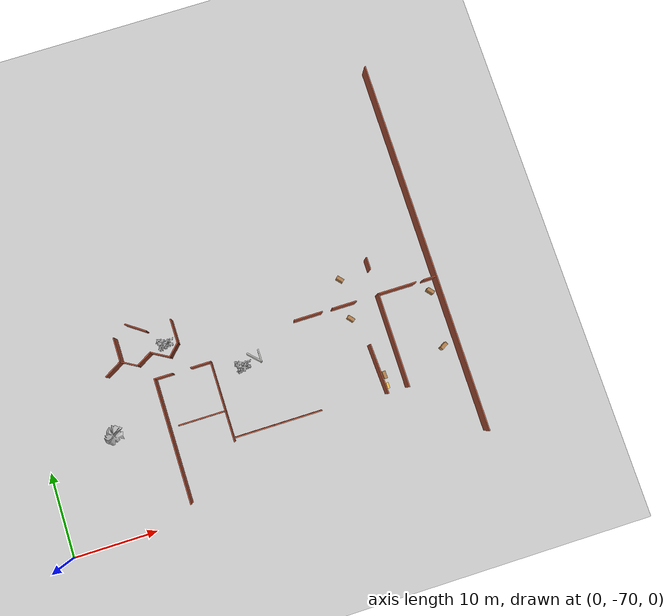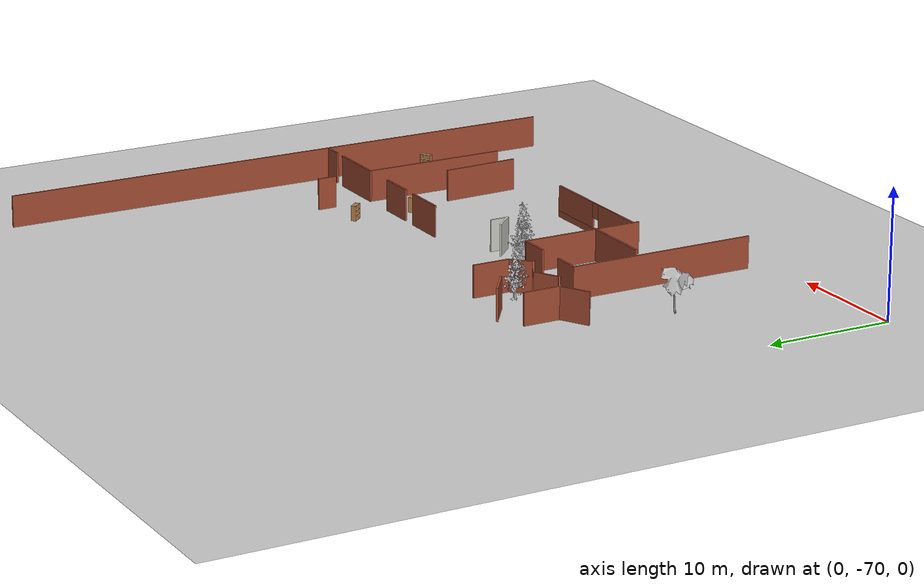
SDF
<sdf version="1.6">
 <world name="default">
  <model name="maze_rect_3">
   <pose>4e-06 -9.9e-05 0 0 -0 1.57001</pose>
   <link name="Wall_24">
    <collision name="Wall_24_Collision">
     <geometry><box><size>3 0.15 2.5</size></box></geometry>
     <pose>0 0 1.25 0 -0 0</pose>
    </collision>
    <visual name="Wall_24_Visual">
     <pose>0 0 1.25 0 -0 0</pose>
     <geometry><box><size>3 0.15 2.5</size></box></geometry>
     <material>
      <script><uri>file://media/materials/scripts/gazebo.material</uri><name>Gazebo/Bricks</name></script>
      <ambient>1 1 1 1</ambient>
     </material>
     <meta><layer>0</layer></meta>
    </visual>
    <pose>-48.4861 -18.717 0 0 -0 3.14159</pose>
   </link>
   <link name="Wall_25">
    <collision name="Wall_25_Collision">
     <geometry><box><size>2 0.15 2.5</size></box></geometry>
     <pose>0 0 1.25 0 -0 0</pose>
    </collision>
    <visual name="Wall_25_Visual">
     <pose>0 0 1.25 0 -0 0</pose>
     <geometry><box><size>2 0.15 2.5</size></box></geometry>
     <material>
      <script><uri>file://media/materials/scripts/gazebo.material</uri><name>Gazebo/Bricks</name></script>
      <ambient>1 1 1 1</ambient>
     </material>
     <meta><layer>0</layer></meta>
    </visual>
    <pose>-50.5652 -18.0629 0 0 -0 2.35619</pose>
   </link>
   <link name="Wall_26">
    <collision name="Wall_26_Collision">
     <geometry><box><size>2.5 0.15 2.5</size></box></geometry>
     <pose>0 0 1.25 0 -0 0</pose>
    </collision>
    <visual name="Wall_26_Visual">
     <pose>0 0 1.25 0 -0 0</pose>
     <geometry><box><size>2.5 0.15 2.5</size></box></geometry>
     <material>
      <script><uri>file://media/materials/scripts/gazebo.material</uri><name>Gazebo/Bricks</name></script>
      <ambient>1 1 1 1</ambient>
     </material>
     <meta><layer>0</layer></meta>
    </visual>
    <pose>-50.6318 -16.3913 0 0 -0 1.0472</pose>
   </link>
   <link name="Wall_27">
    <collision name="Wall_27_Collision">
     <geometry><box><size>2.25 0.15 2.5</size></box></geometry>
     <pose>0 0 1.25 0 -0 0</pose>
    </collision>
    <visual name="Wall_27_Visual">
     <pose>0 0 1.25 0 -0 0</pose>
     <geometry><box><size>2.25 0.15 2.5</size></box></geometry>
     <material>
      <script><uri>file://media/materials/scripts/gazebo.material</uri><name>Gazebo/Bricks</name></script>
      <ambient>1 1 1 1</ambient>
     </material>
     <meta><layer>0</layer></meta>
    </visual>
    <pose>-50.5693 -14.4644 0 0 -0 2.0944</pose>
   </link>
   <link name="Wall_28">
    <collision name="Wall_28_Collision">
     <geometry><box><size>2.25 0.15 2.5</size></box></geometry>
     <pose>0 0 1.25 0 -0 0</pose>
    </collision>
    <visual name="Wall_28_Visual">
     <pose>0 0 1.25 0 -0 0</pose>
     <geometry><box><size>2.25 0.15 2.5</size></box></geometry>
     <material>
      <script><uri>file://media/materials/scripts/gazebo.material</uri><name>Gazebo/Bricks</name></script>
      <ambient>1 1 1 1</ambient>
     </material>
     <meta><layer>0</layer></meta>
    </visual>
    <pose>-50.5693 -12.6457 0 0 -0 1.0472</pose>
   </link>
   <link name="Wall_29">
    <collision name="Wall_29_Collision">
     <geometry><box><size>2.5 0.15 2.5</size></box></geometry>
     <pose>0 0 1.25 0 -0 0</pose>
    </collision>
    <visual name="Wall_29_Visual">
     <pose>0 0 1.25 0 -0 0</pose>
     <geometry><box><size>2.5 0.15 2.5</size></box></geometry>
     <material>
      <script><uri>file://media/materials/scripts/gazebo.material</uri><name>Gazebo/Bricks</name></script>
      <ambient>1 1 1 1</ambient>
     </material>
     <meta><layer>0</layer></meta>
    </visual>
    <pose>-50.6318 -10.7188 0 0 -0 2.0944</pose>
   </link>
   <link name="Wall_588">
    <collision name="Wall_588_Collision">
     <geometry><box><size>3 0.15 2.5</size></box></geometry>
     <pose>0 0 1.25 0 -0 0</pose>
    </collision>
    <visual name="Wall_588_Visual">
     <pose>0 0 1.25 0 -0 0</pose>
     <geometry><box><size>3 0.15 2.5</size></box></geometry>
     <material>
      <script><uri>file://media/materials/scripts/gazebo.material</uri><name>Gazebo/Bricks</name></script>
      <ambient>1 1 1 1</ambient>
     </material>
     <meta><layer>0</layer></meta>
    </visual>
    <pose>-48.6193 -11.7364 0 0 -0 3.14159</pose>
   </link>
   <link name="Wall_590">
    <collision name="Wall_590_Collision">
     <geometry><box><size>2.69612 0.15 2.5</size></box></geometry>
     <pose>0 0 1.25 0 -0 0</pose>
    </collision>
    <visual name="Wall_590_Visual">
     <pose>0 0 1.25 0 -0 0</pose>
     <geometry><box><size>2.69612 0.15 2.5</size></box></geometry>
     <material>
      <script><uri>file://media/materials/scripts/gazebo.material</uri><name>Gazebo/Bricks</name></script>
      <ambient>1 1 1 1</ambient>
     </material>
     <meta><layer>0</layer></meta>
    </visual>
    <pose>-46.7323 -14.5264 0 0 -0 0.953384</pose>
   </link>
   <static>1</static>
  </model>
  <model name="map_palace_v2_model_1_0">
   <pose>-3.1e-05 -55 0 0 -0 3.14</pose>
   <link name="Wall_12">
    <collision name="Wall_12_Collision">
     <geometry><box><size>46 0.15 2.5</size></box></geometry>
     <pose>0 0 1.25 0 -0 0</pose>
    </collision>
    <visual name="Wall_12_Visual">
     <pose>0 0 1.25 0 -0 0</pose>
     <geometry><box><size>46 0.15 2.5</size></box></geometry>
     <material>
      <script><uri>file://media/materials/scripts/gazebo.material</uri><name>Gazebo/Bricks</name></script>
      <ambient>1 1 1 1</ambient>
     </material>
     <meta><layer>0</layer></meta>
    </visual>
    <pose>-50.1193 -7.67754 0 0 -0 -1.5708</pose>
   </link>
   <link name="Wall_132">
    <collision name="Wall_132_Collision">
     <geometry><box><size>1.5 0.15 2.5</size></box></geometry>
     <pose>0 0 1.25 0 -0 0</pose>
    </collision>
    <visual name="Wall_132_Visual">
     <pose>0 0 1.25 0 -0 0</pose>
     <geometry><box><size>1.5 0.15 2.5</size></box></geometry>
     <material>
      <script><uri>file://media/materials/scripts/gazebo.material</uri><name>Gazebo/Bricks</name></script>
      <ambient>1 1 1 1</ambient>
     </material>
     <meta><layer>0</layer></meta>
    </visual>
    <pose>-42.9077 -7.40915 0 0 -0 1.5708</pose>
   </link>
   <link name="Wall_136">
    <collision name="Wall_136_Collision">
     <geometry><box><size>4.75 0.15 2.5</size></box></geometry>
     <pose>0 0 1.25 0 -0 0</pose>
    </collision>
    <visual name="Wall_136_Visual">
     <pose>0 0 1.25 0 -0 0</pose>
     <geometry><box><size>4.75 0.15 2.5</size></box></geometry>
     <material>
      <script><uri>file://media/materials/scripts/gazebo.material</uri><name>Gazebo/Bricks</name></script>
      <ambient>1 1 1 1</ambient>
     </material>
     <meta><layer>0</layer></meta>
    </visual>
    <pose>-45.2077 -3.61102 0 0 -0 3.14159</pose>
   </link>
   <link name="Wall_138">
    <collision name="Wall_138_Collision">
     <geometry><box><size>1.5 0.15 2.5</size></box></geometry>
     <pose>0 0 1.25 0 -0 0</pose>
    </collision>
    <visual name="Wall_138_Visual">
     <pose>0 0 1.25 0 -0 0</pose>
     <geometry><box><size>1.5 0.15 2.5</size></box></geometry>
     <material>
      <script><uri>file://media/materials/scripts/gazebo.material</uri><name>Gazebo/Bricks</name></script>
      <ambient>1 1 1 1</ambient>
     </material>
     <meta><layer>0</layer></meta>
    </visual>
    <pose>-49.2827 -3.61102 0 0 -0 3.14159</pose>
   </link>
   <link name="Wall_179">
    <collision name="Wall_179_Collision">
     <geometry><box><size>3.5 0.15 2.5</size></box></geometry>
     <pose>0 0 1.25 0 -0 0</pose>
    </collision>
    <visual name="Wall_179_Visual">
     <pose>0 0 1.25 0 -0 0</pose>
     <geometry><box><size>3.5 0.15 2.5</size></box></geometry>
     <material>
      <script><uri>file://media/materials/scripts/gazebo.material</uri><name>Gazebo/Bricks</name></script>
      <ambient>1 1 1 1</ambient>
     </material>
     <meta><layer>0</layer></meta>
    </visual>
    <pose>-34.228 -3.55604 0 0 -0 3.14159</pose>
   </link>
   <link name="Wall_18">
    <collision name="Wall_18_Collision">
     <geometry><box><size>9.75 0.15 2.5</size></box></geometry>
     <pose>0 0 1.25 0 -0 0</pose>
    </collision>
    <visual name="Wall_18_Visual">
     <pose>0 0 1.25 0 -0 0</pose>
     <geometry><box><size>9.75 0.15 2.5</size></box></geometry>
     <material>
      <script><uri>file://media/materials/scripts/gazebo.material</uri><name>Gazebo/Bricks</name></script>
      <ambient>1 1 1 1</ambient>
     </material>
     <meta><layer>0</layer></meta>
    </visual>
    <pose>-21.7193 2.94746 0 0 -0 -1.5708</pose>
   </link>
   <link name="Wall_181">
    <collision name="Wall_181_Collision">
     <geometry><box><size>3 0.15 2.5</size></box></geometry>
     <pose>0 0 1.25 0 -0 0</pose>
    </collision>
    <visual name="Wall_181_Visual">
     <pose>0 0 1.25 0 -0 0</pose>
     <geometry><box><size>3 0.15 2.5</size></box></geometry>
     <material>
      <script><uri>file://media/materials/scripts/gazebo.material</uri><name>Gazebo/Bricks</name></script>
      <ambient>1 1 1 1</ambient>
     </material>
     <meta><layer>0</layer></meta>
    </visual>
    <pose>-38.678 -3.55604 0 0 -0 3.14159</pose>
   </link>
   <link name="Wall_19">
    <collision name="Wall_19_Collision">
     <geometry><box><size>2.5 0.15 2.5</size></box></geometry>
     <pose>0 0 1.25 0 -0 0</pose>
    </collision>
    <visual name="Wall_19_Visual">
     <pose>0 0 1.25 0 -0 0</pose>
     <geometry><box><size>2.5 0.15 2.5</size></box></geometry>
     <material>
      <script><uri>file://media/materials/scripts/gazebo.material</uri><name>Gazebo/Bricks</name></script>
      <ambient>1 1 1 1</ambient>
     </material>
     <meta><layer>0</layer></meta>
    </visual>
    <pose>-20.5443 -1.85254 0 0 -0 0</pose>
   </link>
   <link name="Wall_191">
    <collision name="Wall_191_Collision">
     <geometry><box><size>6.09813 0.15 2.5</size></box></geometry>
     <pose>0 0 1.25 0 -0 0</pose>
    </collision>
    <visual name="Wall_191_Visual">
     <pose>0 0 1.25 0 -0 0</pose>
     <geometry><box><size>6.09813 0.15 2.5</size></box></geometry>
     <material>
      <script><uri>file://media/materials/scripts/gazebo.material</uri><name>Gazebo/Bricks</name></script>
      <ambient>1 1 1 1</ambient>
     </material>
     <meta><layer>0</layer></meta>
    </visual>
    <pose>-40.2476 4.77589 0 0 -0 1.61175</pose>
   </link>
   <link name="Wall_198">
    <collision name="Wall_198_Collision">
     <geometry><box><size>5.75 0.15 2.5</size></box></geometry>
     <pose>0 0 1.25 0 -0 0</pose>
    </collision>
    <visual name="Wall_198_Visual">
     <pose>0 0 1.25 0 -0 0</pose>
     <geometry><box><size>5.75 0.15 2.5</size></box></geometry>
     <material>
      <script><uri>file://media/materials/scripts/gazebo.material</uri><name>Gazebo/Bricks</name></script>
      <ambient>1 1 1 1</ambient>
     </material>
     <meta><layer>0</layer></meta>
    </visual>
    <pose>-18.9274 4.09535 0 0 -0 0</pose>
   </link>
   <link name="Wall_21">
    <collision name="Wall_21_Collision">
     <geometry><box><size>2.25 0.15 2.5</size></box></geometry>
     <pose>0 0 1.25 0 -0 0</pose>
    </collision>
    <visual name="Wall_21_Visual">
     <pose>0 0 1.25 0 -0 0</pose>
     <geometry><box><size>2.25 0.15 2.5</size></box></geometry>
     <material>
      <script><uri>file://media/materials/scripts/gazebo.material</uri><name>Gazebo/Bricks</name></script>
      <ambient>1 1 1 1</ambient>
     </material>
     <meta><layer>0</layer></meta>
    </visual>
    <pose>-15.9693 -1.85254 0 0 -0 0</pose>
   </link>
   <link name="Wall_22">
    <collision name="Wall_22_Collision">
     <geometry><box><size>15 0.15 2.5</size></box></geometry>
     <pose>0 0 1.25 0 -0 0</pose>
    </collision>
    <visual name="Wall_22_Visual">
     <pose>0 0 1.25 0 -0 0</pose>
     <geometry><box><size>15 0.15 2.5</size></box></geometry>
     <material>
      <script><uri>file://media/materials/scripts/gazebo.material</uri><name>Gazebo/Bricks</name></script>
      <ambient>1 1 1 1</ambient>
     </material>
     <meta><layer>0</layer></meta>
    </visual>
    <pose>-14.9193 5.57246 0 0 -0 1.5708</pose>
   </link>
   <link name="Wall_312">
    <pose>-27.0518 7.36745 0 0 -0 3.14159</pose>
    <visual name="Wall_312_Visual_0">
     <pose>-2.88797 0 1.25 0 -0 0</pose>
     <geometry><box><size>4.97407 0.15 2.5</size></box></geometry>
     <material>
      <script><uri>file://media/materials/scripts/gazebo.material</uri><name>Gazebo/Bricks</name></script>
      <ambient>1 1 1 1</ambient>
     </material>
     <meta><layer>0</layer></meta>
    </visual>
    <collision name="Wall_312_Collision_0">
     <geometry><box><size>4.97407 0.15 2.5</size></box></geometry>
     <pose>-2.88797 0 1.25 0 -0 0</pose>
    </collision>
    <visual name="Wall_312_Visual_1">
     <pose>2.48703 0 0.25 0 -0 0</pose>
     <geometry><box><size>5.77593 0.15 0.5</size></box></geometry>
     <material>
      <script><uri>file://media/materials/scripts/gazebo.material</uri><name>Gazebo/Bricks</name></script>
      <ambient>1 1 1 1</ambient>
     </material>
     <meta><layer>0</layer></meta>
    </visual>
    <collision name="Wall_312_Collision_1">
     <geometry><box><size>5.77593 0.15 0.5</size></box></geometry>
     <pose>2.48703 0 0.25 0 -0 0</pose>
    </collision>
    <visual name="Wall_312_Visual_2">
     <pose>2.88703 0 1.5 0 -0 0</pose>
     <geometry><box><size>4.97593 0.15 2</size></box></geometry>
     <material>
      <script><uri>file://media/materials/scripts/gazebo.material</uri><name>Gazebo/Bricks</name></script>
      <ambient>1 1 1 1</ambient>
     </material>
     <meta><layer>0</layer></meta>
    </visual>
    <collision name="Wall_312_Collision_2">
     <geometry><box><size>4.97593 0.15 2</size></box></geometry>
     <pose>2.88703 0 1.5 0 -0 0</pose>
    </collision>
    <visual name="Wall_312_Visual_3">
     <pose>-0.000933 0 1.9 0 -0 0</pose>
     <geometry><box><size>0.8 0.15 1.2</size></box></geometry>
     <material>
      <script><uri>file://media/materials/scripts/gazebo.material</uri><name>Gazebo/Bricks</name></script>
      <ambient>1 1 1 1</ambient>
     </material>
     <meta><layer>0</layer></meta>
    </visual>
    <collision name="Wall_312_Collision_3">
     <geometry><box><size>0.8 0.15 1.2</size></box></geometry>
     <pose>-0.000933 0 1.9 0 -0 0</pose>
    </collision>
   </link>
   <link name="Wall_96">
    <collision name="Wall_96_Collision">
     <geometry><box><size>11.5 0.15 2.5</size></box></geometry>
     <pose>0 0 1.25 0 -0 0</pose>
    </collision>
    <visual name="Wall_96_Visual">
     <pose>0 0 1.25 0 -0 0</pose>
     <geometry><box><size>11.5 0.15 2.5</size></box></geometry>
     <material>
      <script><uri>file://media/materials/scripts/gazebo.material</uri><name>Gazebo/Bricks</name></script>
      <ambient>1 1 1 1</ambient>
     </material>
     <meta><layer>0</layer></meta>
    </visual>
    <pose>-42.9077 2.06398 0 0 -0 -1.5708</pose>
   </link>
   <static>1</static>
  </model>
  <model name="bookshelf_clone_1_clone_1">
   <static>1</static>
   <link name="link">
    <inertial><mass>1</mass></inertial>
    <collision name="back">
     <pose>0 0.005 0.6 0 -0 0</pose>
     <geometry><box><size>0.9 0.01 1.2</size></box></geometry>
    </collision>
    <visual name="visual1">
     <pose>0 0.005 0.6 0 -0 0</pose>
     <geometry><box><size>0.9 0.01 1.2</size></box></geometry>
     <material>
      <script><uri>file://media/materials/scripts/gazebo.material</uri><name>Gazebo/Wood</name></script>
     </material>
    </visual>
    <collision name="left_side">
     <pose>0.45 -0.195 0.6 0 -0 0</pose>
     <geometry><box><size>0.02 0.4 1.2</size></box></geometry>
    </collision>
    <visual name="visual2">
     <pose>0.45 -0.195 0.6 0 -0 0</pose>
     <geometry><box><size>0.02 0.4 1.2</size></box></geometry>
     <material>
      <script><uri>file://media/materials/scripts/gazebo.material</uri><name>Gazebo/Wood</name></script>
     </material>
    </visual>
    <collision name="right_side">
     <pose>-0.45 -0.195 0.6 0 -0 0</pose>
     <geometry><box><size>0.02 0.4 1.2</size></box></geometry>
    </collision>
    <visual name="visual3">
     <pose>-0.45 -0.195 0.6 0 -0 0</pose>
     <geometry><box><size>0.02 0.4 1.2</size></box></geometry>
     <material>
      <script><uri>file://media/materials/scripts/gazebo.material</uri><name>Gazebo/Wood</name></script>
     </material>
    </visual>
    <collision name="bottom">
     <pose>0 -0.195 0.03 0 -0 0</pose>
     <geometry><box><size>0.88 0.4 0.06</size></box></geometry>
    </collision>
    <visual name="visual4">
     <pose>0 -0.195 0.03 0 -0 0</pose>
     <geometry><box><size>0.88 0.4 0.06</size></box></geometry>
     <material>
      <script><uri>file://media/materials/scripts/gazebo.material</uri><name>Gazebo/Wood</name></script>
     </material>
    </visual>
    <collision name="top">
     <pose>0 -0.195 1.19 0 -0 0</pose>
     <geometry><box><size>0.88 0.4 0.02</size></box></geometry>
    </collision>
    <visual name="visual5">
     <pose>0 -0.195 1.19 0 -0 0</pose>
     <geometry><box><size>0.88 0.4 0.02</size></box></geometry>
     <material>
      <script><uri>file://media/materials/scripts/gazebo.material</uri><name>Gazebo/Wood</name></script>
     </material>
    </visual>
    <collision name="low_shelf">
     <pose>0 -0.195 0.43 0 -0 0</pose>
     <geometry><box><size>0.88 0.4 0.02</size></box></geometry>
    </collision>
    <visual name="visual6">
     <pose>0 -0.195 0.43 0 -0 0</pose>
     <geometry><box><size>0.88 0.4 0.02</size></box></geometry>
     <material>
      <script><uri>file://media/materials/scripts/gazebo.material</uri><name>Gazebo/Wood</name></script>
     </material>
    </visual>
    <collision name="high_shelf">
     <pose>0 -0.195 0.8 0 -0 0</pose>
     <geometry><box><size>0.88 0.4 0.02</size></box></geometry>
    </collision>
    <visual name="visual7">
     <pose>0 -0.195 0.8 0 -0 0</pose>
     <geometry><box><size>0.88 0.4 0.02</size></box></geometry>
     <material>
      <script><uri>file://media/materials/scripts/gazebo.material</uri><name>Gazebo/Wood</name></script>
     </material>
    </visual>
   </link>
   <pose>39.257 -53.0439 0 0 0 -0.862924</pose>
  </model>
  <model name="bookshelf_clone_1_clone_1_clone">
   <static>1</static>
   <link name="link">
    <inertial><mass>1</mass></inertial>
    <collision name="back">
     <pose>0 0.005 0.6 0 -0 0</pose>
     <geometry><box><size>0.9 0.01 1.2</size></box></geometry>
    </collision>
    <visual name="visual1">
     <pose>0 0.005 0.6 0 -0 0</pose>
     <geometry><box><size>0.9 0.01 1.2</size></box></geometry>
     <material>
      <script><uri>file://media/materials/scripts/gazebo.material</uri><name>Gazebo/Wood</name></script>
     </material>
    </visual>
    <collision name="left_side">
     <pose>0.45 -0.195 0.6 0 -0 0</pose>
     <geometry><box><size>0.02 0.4 1.2</size></box></geometry>
    </collision>
    <visual name="visual2">
     <pose>0.45 -0.195 0.6 0 -0 0</pose>
     <geometry><box><size>0.02 0.4 1.2</size></box></geometry>
     <material>
      <script><uri>file://media/materials/scripts/gazebo.material</uri><name>Gazebo/Wood</name></script>
     </material>
    </visual>
    <collision name="right_side">
     <pose>-0.45 -0.195 0.6 0 -0 0</pose>
     <geometry><box><size>0.02 0.4 1.2</size></box></geometry>
    </collision>
    <visual name="visual3">
     <pose>-0.45 -0.195 0.6 0 -0 0</pose>
     <geometry><box><size>0.02 0.4 1.2</size></box></geometry>
     <material>
      <script><uri>file://media/materials/scripts/gazebo.material</uri><name>Gazebo/Wood</name></script>
     </material>
    </visual>
    <collision name="bottom">
     <pose>0 -0.195 0.03 0 -0 0</pose>
     <geometry><box><size>0.88 0.4 0.06</size></box></geometry>
    </collision>
    <visual name="visual4">
     <pose>0 -0.195 0.03 0 -0 0</pose>
     <geometry><box><size>0.88 0.4 0.06</size></box></geometry>
     <material>
      <script><uri>file://media/materials/scripts/gazebo.material</uri><name>Gazebo/Wood</name></script>
     </material>
    </visual>
    <collision name="top">
     <pose>0 -0.195 1.19 0 -0 0</pose>
     <geometry><box><size>0.88 0.4 0.02</size></box></geometry>
    </collision>
    <visual name="visual5">
     <pose>0 -0.195 1.19 0 -0 0</pose>
     <geometry><box><size>0.88 0.4 0.02</size></box></geometry>
     <material>
      <script><uri>file://media/materials/scripts/gazebo.material</uri><name>Gazebo/Wood</name></script>
     </material>
    </visual>
    <collision name="low_shelf">
     <pose>0 -0.195 0.43 0 -0 0</pose>
     <geometry><box><size>0.88 0.4 0.02</size></box></geometry>
    </collision>
    <visual name="visual6">
     <pose>0 -0.195 0.43 0 -0 0</pose>
     <geometry><box><size>0.88 0.4 0.02</size></box></geometry>
     <material>
      <script><uri>file://media/materials/scripts/gazebo.material</uri><name>Gazebo/Wood</name></script>
     </material>
    </visual>
    <collision name="high_shelf">
     <pose>0 -0.195 0.8 0 -0 0</pose>
     <geometry><box><size>0.88 0.4 0.02</size></box></geometry>
    </collision>
    <visual name="visual7">
     <pose>0 -0.195 0.8 0 -0 0</pose>
     <geometry><box><size>0.88 0.4 0.02</size></box></geometry>
     <material>
      <script><uri>file://media/materials/scripts/gazebo.material</uri><name>Gazebo/Wood</name></script>
     </material>
    </visual>
   </link>
   <pose>40.614 -60.7059 0 0 -0 1.61733</pose>
  </model>
  <model name="bookshelf_clone_1_clone_1_clone_0">
   <static>1</static>
   <link name="link">
    <inertial><mass>1</mass></inertial>
    <collision name="back">
     <pose>0 0.005 0.6 0 -0 0</pose>
     <geometry><box><size>0.9 0.01 1.2</size></box></geometry>
    </collision>
    <visual name="visual1">
     <pose>0 0.005 0.6 0 -0 0</pose>
     <geometry><box><size>0.9 0.01 1.2</size></box></geometry>
     <material>
      <script><uri>file://media/materials/scripts/gazebo.material</uri><name>Gazebo/Wood</name></script>
     </material>
    </visual>
    <collision name="left_side">
     <pose>0.45 -0.195 0.6 0 -0 0</pose>
     <geometry><box><size>0.02 0.4 1.2</size></box></geometry>
    </collision>
    <visual name="visual2">
     <pose>0.45 -0.195 0.6 0 -0 0</pose>
     <geometry><box><size>0.02 0.4 1.2</size></box></geometry>
     <material>
      <script><uri>file://media/materials/scripts/gazebo.material</uri><name>Gazebo/Wood</name></script>
     </material>
    </visual>
    <collision name="right_side">
     <pose>-0.45 -0.195 0.6 0 -0 0</pose>
     <geometry><box><size>0.02 0.4 1.2</size></box></geometry>
    </collision>
    <visual name="visual3">
     <pose>-0.45 -0.195 0.6 0 -0 0</pose>
     <geometry><box><size>0.02 0.4 1.2</size></box></geometry>
     <material>
      <script><uri>file://media/materials/scripts/gazebo.material</uri><name>Gazebo/Wood</name></script>
     </material>
    </visual>
    <collision name="bottom">
     <pose>0 -0.195 0.03 0 -0 0</pose>
     <geometry><box><size>0.88 0.4 0.06</size></box></geometry>
    </collision>
    <visual name="visual4">
     <pose>0 -0.195 0.03 0 -0 0</pose>
     <geometry><box><size>0.88 0.4 0.06</size></box></geometry>
     <material>
      <script><uri>file://media/materials/scripts/gazebo.material</uri><name>Gazebo/Wood</name></script>
     </material>
    </visual>
    <collision name="top">
     <pose>0 -0.195 1.19 0 -0 0</pose>
     <geometry><box><size>0.88 0.4 0.02</size></box></geometry>
    </collision>
    <visual name="visual5">
     <pose>0 -0.195 1.19 0 -0 0</pose>
     <geometry><box><size>0.88 0.4 0.02</size></box></geometry>
     <material>
      <script><uri>file://media/materials/scripts/gazebo.material</uri><name>Gazebo/Wood</name></script>
     </material>
    </visual>
    <collision name="low_shelf">
     <pose>0 -0.195 0.43 0 -0 0</pose>
     <geometry><box><size>0.88 0.4 0.02</size></box></geometry>
    </collision>
    <visual name="visual6">
     <pose>0 -0.195 0.43 0 -0 0</pose>
     <geometry><box><size>0.88 0.4 0.02</size></box></geometry>
     <material>
      <script><uri>file://media/materials/scripts/gazebo.material</uri><name>Gazebo/Wood</name></script>
     </material>
    </visual>
    <collision name="high_shelf">
     <pose>0 -0.195 0.8 0 -0 0</pose>
     <geometry><box><size>0.88 0.4 0.02</size></box></geometry>
    </collision>
    <visual name="visual7">
     <pose>0 -0.195 0.8 0 -0 0</pose>
     <geometry><box><size>0.88 0.4 0.02</size></box></geometry>
     <material>
      <script><uri>file://media/materials/scripts/gazebo.material</uri><name>Gazebo/Wood</name></script>
     </material>
    </visual>
   </link>
   <pose>49.3682 -52.7157 0 0 0 -0.862924</pose>
  </model>
  <model name="bookshelf_clone_1_clone_1_clone_1">
   <static>1</static>
   <link name="link">
    <inertial><mass>1</mass></inertial>
    <collision name="back">
     <pose>0 0.005 0.6 0 -0 0</pose>
     <geometry><box><size>0.9 0.01 1.2</size></box></geometry>
    </collision>
    <visual name="visual1">
     <pose>0 0.005 0.6 0 -0 0</pose>
     <geometry><box><size>0.9 0.01 1.2</size></box></geometry>
     <material>
      <script><uri>file://media/materials/scripts/gazebo.material</uri><name>Gazebo/Wood</name></script>
     </material>
    </visual>
    <collision name="left_side">
     <pose>0.45 -0.195 0.6 0 -0 0</pose>
     <geometry><box><size>0.02 0.4 1.2</size></box></geometry>
    </collision>
    <visual name="visual2">
     <pose>0.45 -0.195 0.6 0 -0 0</pose>
     <geometry><box><size>0.02 0.4 1.2</size></box></geometry>
     <material>
      <script><uri>file://media/materials/scripts/gazebo.material</uri><name>Gazebo/Wood</name></script>
     </material>
    </visual>
    <collision name="right_side">
     <pose>-0.45 -0.195 0.6 0 -0 0</pose>
     <geometry><box><size>0.02 0.4 1.2</size></box></geometry>
    </collision>
    <visual name="visual3">
     <pose>-0.45 -0.195 0.6 0 -0 0</pose>
     <geometry><box><size>0.02 0.4 1.2</size></box></geometry>
     <material>
      <script><uri>file://media/materials/scripts/gazebo.material</uri><name>Gazebo/Wood</name></script>
     </material>
    </visual>
    <collision name="bottom">
     <pose>0 -0.195 0.03 0 -0 0</pose>
     <geometry><box><size>0.88 0.4 0.06</size></box></geometry>
    </collision>
    <visual name="visual4">
     <pose>0 -0.195 0.03 0 -0 0</pose>
     <geometry><box><size>0.88 0.4 0.06</size></box></geometry>
     <material>
      <script><uri>file://media/materials/scripts/gazebo.material</uri><name>Gazebo/Wood</name></script>
     </material>
    </visual>
    <collision name="top">
     <pose>0 -0.195 1.19 0 -0 0</pose>
     <geometry><box><size>0.88 0.4 0.02</size></box></geometry>
    </collision>
    <visual name="visual5">
     <pose>0 -0.195 1.19 0 -0 0</pose>
     <geometry><box><size>0.88 0.4 0.02</size></box></geometry>
     <material>
      <script><uri>file://media/materials/scripts/gazebo.material</uri><name>Gazebo/Wood</name></script>
     </material>
    </visual>
    <collision name="low_shelf">
     <pose>0 -0.195 0.43 0 -0 0</pose>
     <geometry><box><size>0.88 0.4 0.02</size></box></geometry>
    </collision>
    <visual name="visual6">
     <pose>0 -0.195 0.43 0 -0 0</pose>
     <geometry><box><size>0.88 0.4 0.02</size></box></geometry>
     <material>
      <script><uri>file://media/materials/scripts/gazebo.material</uri><name>Gazebo/Wood</name></script>
     </material>
    </visual>
    <collision name="high_shelf">
     <pose>0 -0.195 0.8 0 -0 0</pose>
     <geometry><box><size>0.88 0.4 0.02</size></box></geometry>
    </collision>
    <visual name="visual7">
     <pose>0 -0.195 0.8 0 -0 0</pose>
     <geometry><box><size>0.88 0.4 0.02</size></box></geometry>
     <material>
      <script><uri>file://media/materials/scripts/gazebo.material</uri><name>Gazebo/Wood</name></script>
     </material>
    </visual>
   </link>
   <pose>39.4716 -48.1434 0 0 0 -0.862924</pose>
  </model>
  <model name="bookshelf_clone_1_clone_1_clone_0_clone">
   <static>1</static>
   <link name="link">
    <inertial><mass>1</mass></inertial>
    <collision name="back">
     <pose>0 0.005 0.6 0 -0 0</pose>
     <geometry><box><size>0.9 0.01 1.2</size></box></geometry>
    </collision>
    <visual name="visual1">
     <pose>0 0.005 0.6 0 -0 0</pose>
     <geometry><box><size>0.9 0.01 1.2</size></box></geometry>
     <material>
      <script><uri>file://media/materials/scripts/gazebo.material</uri><name>Gazebo/Wood</name></script>
     </material>
    </visual>
    <collision name="left_side">
     <pose>0.45 -0.195 0.6 0 -0 0</pose>
     <geometry><box><size>0.02 0.4 1.2</size></box></geometry>
    </collision>
    <visual name="visual2">
     <pose>0.45 -0.195 0.6 0 -0 0</pose>
     <geometry><box><size>0.02 0.4 1.2</size></box></geometry>
     <material>
      <script><uri>file://media/materials/scripts/gazebo.material</uri><name>Gazebo/Wood</name></script>
     </material>
    </visual>
    <collision name="right_side">
     <pose>-0.45 -0.195 0.6 0 -0 0</pose>
     <geometry><box><size>0.02 0.4 1.2</size></box></geometry>
    </collision>
    <visual name="visual3">
     <pose>-0.45 -0.195 0.6 0 -0 0</pose>
     <geometry><box><size>0.02 0.4 1.2</size></box></geometry>
     <material>
      <script><uri>file://media/materials/scripts/gazebo.material</uri><name>Gazebo/Wood</name></script>
     </material>
    </visual>
    <collision name="bottom">
     <pose>0 -0.195 0.03 0 -0 0</pose>
     <geometry><box><size>0.88 0.4 0.06</size></box></geometry>
    </collision>
    <visual name="visual4">
     <pose>0 -0.195 0.03 0 -0 0</pose>
     <geometry><box><size>0.88 0.4 0.06</size></box></geometry>
     <material>
      <script><uri>file://media/materials/scripts/gazebo.material</uri><name>Gazebo/Wood</name></script>
     </material>
    </visual>
    <collision name="top">
     <pose>0 -0.195 1.19 0 -0 0</pose>
     <geometry><box><size>0.88 0.4 0.02</size></box></geometry>
    </collision>
    <visual name="visual5">
     <pose>0 -0.195 1.19 0 -0 0</pose>
     <geometry><box><size>0.88 0.4 0.02</size></box></geometry>
     <material>
      <script><uri>file://media/materials/scripts/gazebo.material</uri><name>Gazebo/Wood</name></script>
     </material>
    </visual>
    <collision name="low_shelf">
     <pose>0 -0.195 0.43 0 -0 0</pose>
     <geometry><box><size>0.88 0.4 0.02</size></box></geometry>
    </collision>
    <visual name="visual6">
     <pose>0 -0.195 0.43 0 -0 0</pose>
     <geometry><box><size>0.88 0.4 0.02</size></box></geometry>
     <material>
      <script><uri>file://media/materials/scripts/gazebo.material</uri><name>Gazebo/Wood</name></script>
     </material>
    </visual>
    <collision name="high_shelf">
     <pose>0 -0.195 0.8 0 -0 0</pose>
     <geometry><box><size>0.88 0.4 0.02</size></box></geometry>
    </collision>
    <visual name="visual7">
     <pose>0 -0.195 0.8 0 -0 0</pose>
     <geometry><box><size>0.88 0.4 0.02</size></box></geometry>
     <material>
      <script><uri>file://media/materials/scripts/gazebo.material</uri><name>Gazebo/Wood</name></script>
     </material>
    </visual>
   </link>
   <pose>48.704 -59.7064 0 0 0 -2.59294</pose>
  </model>
  <model name="tree3_clone_31">
   <link name="link_1">
    <inertial>
     <mass>1</mass>
     <inertia>
      <ixx>0.166667</ixx>
      <ixy>0</ixy>
      <ixz>0</ixz>
      <iyy>0.166667</iyy>
      <iyz>0</iyz>
      <izz>0.166667</izz>
     </inertia>
    </inertial>
    <visual name="visual">
     <geometry><mesh><uri>model://tree3/Palmera.obj</uri><scale>1 1 1</scale></mesh></geometry>
    </visual>
    <collision name="collision">
     <geometry><mesh><uri>model://tree3/Palmera.obj</uri><scale>1 1 1</scale></mesh></geometry>
     <surface>
      <friction>
       <ode><mu>1</mu><mu2>1</mu2><fdir1>0 0 0</fdir1><slip1>0</slip1><slip2>0</slip2></ode>
       <torsional>
        <coefficient>1</coefficient>
        <patch_radius>0</patch_radius>
        <surface_radius>0</surface_radius>
        <use_patch_radius>1</use_patch_radius>
        <ode><slip>0</slip></ode>
       </torsional>
      </friction>
      <bounce><restitution_coefficient>0</restitution_coefficient><threshold>1e+06</threshold></bounce>
      <contact>
       <collide_without_contact>0</collide_without_contact>
       <collide_without_contact_bitmask>1</collide_without_contact_bitmask>
       <collide_bitmask>1</collide_bitmask>
       <ode>
        <soft_cfm>0</soft_cfm>
        <soft_erp>0.2</soft_erp>
        <kp>1e+13</kp>
        <kd>1</kd>
        <max_vel>0.01</max_vel>
        <min_depth>0</min_depth>
       </ode>
       <bullet>
        <split_impulse>1</split_impulse>
        <split_impulse_penetration_threshold>-0.01</split_impulse_penetration_threshold>
        <soft_cfm>0</soft_cfm>
        <soft_erp>0.2</soft_erp>
        <kp>1e+13</kp>
        <kd>1</kd>
       </bullet>
      </contact>
     </surface>
    </collision>
   </link>
   <static>1</static>
   <pose>9 -58 0 0 -0 0</pose>
  </model>
  <model name="tree3_clone_31">
   <link name="link_1">
    <inertial>
     <mass>1</mass>
     <inertia>
      <ixx>0.166667</ixx>
      <ixy>0</ixy>
      <ixz>0</ixz>
      <iyy>0.166667</iyy>
      <iyz>0</iyz>
      <izz>0.166667</izz>
     </inertia>
    </inertial>
    <visual name="visual">
     <geometry><mesh><uri>model://tree3/Palmera.obj</uri><scale>1 1 1</scale></mesh></geometry>
    </visual>
    <collision name="collision">
     <geometry><mesh><uri>model://tree3/Palmera.obj</uri><scale>1 1 1</scale></mesh></geometry>
     <surface>
      <friction>
       <ode><mu>1</mu><mu2>1</mu2><fdir1>0 0 0</fdir1><slip1>0</slip1><slip2>0</slip2></ode>
       <torsional>
        <coefficient>1</coefficient>
        <patch_radius>0</patch_radius>
        <surface_radius>0</surface_radius>
        <use_patch_radius>1</use_patch_radius>
        <ode><slip>0</slip></ode>
       </torsional>
      </friction>
      <bounce><restitution_coefficient>0</restitution_coefficient><threshold>1e+06</threshold></bounce>
      <contact>
       <collide_without_contact>0</collide_without_contact>
       <collide_without_contact_bitmask>1</collide_without_contact_bitmask>
       <collide_bitmask>1</collide_bitmask>
       <ode>
        <soft_cfm>0</soft_cfm>
        <soft_erp>0.2</soft_erp>
        <kp>1e+13</kp>
        <kd>1</kd>
        <max_vel>0.01</max_vel>
        <min_depth>0</min_depth>
       </ode>
       <bullet>
        <split_impulse>1</split_impulse>
        <split_impulse_penetration_threshold>-0.01</split_impulse_penetration_threshold>
        <soft_cfm>0</soft_cfm>
        <soft_erp>0.2</soft_erp>
        <kp>1e+13</kp>
        <kd>1</kd>
       </bullet>
      </contact>
     </surface>
    </collision>
   </link>
   <static>1</static>
   <pose>9 -58 0 0 -0 0</pose>
  </model>
  <model name="v_wall_1">
   <pose>26.7586 -54.2008 0 0 -0 0</pose>
   <link name="Wall_0">
    <collision name="Wall_0_Collision">
     <geometry><box><size>2 0.15 2.5</size></box></geometry>
     <pose>0 0 1.25 0 -0 0</pose>
    </collision>
    <visual name="Wall_0_Visual">
     <pose>0 0 1.25 0 -0 0</pose>
     <geometry><box><size>2 0.15 2.5</size></box></geometry>
     <material>
      <script><uri>file://media/materials/scripts/gazebo.material</uri><name>Gazebo/CeilingTiled</name></script>
      <ambient>1 1 1 1</ambient>
     </material>
     <meta><layer>0</layer></meta>
    </visual>
    <pose>0 -0.005393 0 0 -0 -0.785398</pose>
   </link>
   <link name="Wall_1">
    <collision name="Wall_1_Collision">
     <geometry><box><size>1.5 0.15 2.5</size></box></geometry>
     <pose>0 0 1.25 0 -0 0</pose>
    </collision>
    <visual name="Wall_1_Visual">
     <pose>0 0 1.25 0 -0 0</pose>
     <geometry><box><size>1.5 0.15 2.5</size></box></geometry>
     <material>
      <script><uri>file://media/materials/scripts/gazebo.material</uri><name>Gazebo/CeilingTiled</name></script>
      <ambient>1 1 1 1</ambient>
     </material>
     <meta><layer>0</layer></meta>
    </visual>
    <pose>0.654074 0.015533 0 0 -0 1.5708</pose>
   </link>
   <static>1</static>
  </model>
  <model name="tree_2m*2m_23">
   <link name="link_0">
    <inertial>
     <mass>1</mass>
     <inertia>
      <ixx>0.166667</ixx>
      <ixy>0</ixy>
      <ixz>0</ixz>
      <iyy>0.166667</iyy>
      <iyz>0</iyz>
      <izz>0.166667</izz>
     </inertia>
    </inertial>
    <pose>-0 -0 -0 1.60763 -0 0</pose>
    <visual name="visual">
     <geometry><mesh><uri>model://tree_2m*2m/needle01.obj</uri><scale>1 1 1</scale></mesh></geometry>
    </visual>
    <collision name="collision">
     <geometry><mesh><uri>model://tree_2m*2m/needle01.obj</uri><scale>1 1 1</scale></mesh></geometry>
     <surface>
      <friction>
       <ode><mu>1</mu><mu2>1</mu2><fdir1>0 0 0</fdir1><slip1>0</slip1><slip2>0</slip2></ode>
       <torsional>
        <coefficient>1</coefficient>
        <patch_radius>0</patch_radius>
        <surface_radius>0</surface_radius>
        <use_patch_radius>1</use_patch_radius>
        <ode><slip>0</slip></ode>
       </torsional>
      </friction>
      <bounce><restitution_coefficient>0</restitution_coefficient><threshold>1e+06</threshold></bounce>
      <contact>
       <collide_without_contact>0</collide_without_contact>
       <collide_without_contact_bitmask>1</collide_without_contact_bitmask>
       <collide_bitmask>1</collide_bitmask>
       <ode>
        <soft_cfm>0</soft_cfm>
        <soft_erp>0.2</soft_erp>
        <kp>1e+13</kp>
        <kd>1</kd>
        <max_vel>0.01</max_vel>
        <min_depth>0</min_depth>
       </ode>
       <bullet>
        <split_impulse>1</split_impulse>
        <split_impulse_penetration_threshold>-0.01</split_impulse_penetration_threshold>
        <soft_cfm>0</soft_cfm>
        <soft_erp>0.2</soft_erp>
        <kp>1e+13</kp>
        <kd>1</kd>
       </bullet>
      </contact>
     </surface>
    </collision>
   </link>
   <static>1</static>
   <pose>17.1379 -49.5674 0 0 -0 0</pose>
  </model>
  <model name="tree_2m*2m_27">
   <link name="link_0">
    <inertial>
     <mass>1</mass>
     <inertia>
      <ixx>0.166667</ixx>
      <ixy>0</ixy>
      <ixz>0</ixz>
      <iyy>0.166667</iyy>
      <iyz>0</iyz>
      <izz>0.166667</izz>
     </inertia>
    </inertial>
    <pose>-0 -0 -0 1.60763 -0 0</pose>
    <visual name="visual">
     <geometry><mesh><uri>model://tree_2m*2m/needle01.obj</uri><scale>1 1 1</scale></mesh></geometry>
    </visual>
    <collision name="collision">
     <geometry><mesh><uri>model://tree_2m*2m/needle01.obj</uri><scale>1 1 1</scale></mesh></geometry>
     <surface>
      <friction>
       <ode><mu>1</mu><mu2>1</mu2><fdir1>0 0 0</fdir1><slip1>0</slip1><slip2>0</slip2></ode>
       <torsional>
        <coefficient>1</coefficient>
        <patch_radius>0</patch_radius>
        <surface_radius>0</surface_radius>
        <use_patch_radius>1</use_patch_radius>
        <ode><slip>0</slip></ode>
       </torsional>
      </friction>
      <bounce><restitution_coefficient>0</restitution_coefficient><threshold>1e+06</threshold></bounce>
      <contact>
       <collide_without_contact>0</collide_without_contact>
       <collide_without_contact_bitmask>1</collide_without_contact_bitmask>
       <collide_bitmask>1</collide_bitmask>
       <ode>
        <soft_cfm>0</soft_cfm>
        <soft_erp>0.2</soft_erp>
        <kp>1e+13</kp>
        <kd>1</kd>
        <max_vel>0.01</max_vel>
        <min_depth>0</min_depth>
       </ode>
       <bullet>
        <split_impulse>1</split_impulse>
        <split_impulse_penetration_threshold>-0.01</split_impulse_penetration_threshold>
        <soft_cfm>0</soft_cfm>
        <soft_erp>0.2</soft_erp>
        <kp>1e+13</kp>
        <kd>1</kd>
       </bullet>
      </contact>
     </surface>
    </collision>
   </link>
   <static>1</static>
   <pose>25.1855 -54.8284 0 0 -0 0</pose>
  </model>
  <model name="Box_15x30_11">
   <link name="Wall">
    <pose>0 0 0.1985 0 -0 0</pose>
    <inertial>
     <mass>5</mass>
     <inertia><ixx>0.3089</ixx><iyy>0.1022</iyy><izz>0.2797</izz><ixy>0</ixy><ixz>0</ixz><iyz>0</iyz></inertia>
    </inertial>
    <collision name="Wall_Collision"><geometry><box><size>0.296 0.764 0.397</size></box></geometry></collision>
    <visual name="Wall_Visual">
     <geometry><box><size>0.296 0.764 0.397</size></box></geometry>
     <material>
      <script><uri>file://media/materials/scripts/gazebo.material</uri><name>Gazebo/Grey</name></script>
      <ambient>1 0.764706 0.305882 1</ambient>
     </material>
    </visual>
   </link>
   <static>1</static>
   <pose>40.8828 -62.0061 0 0 -0 0</pose>
  </model>
  <model name="ground_plane">
   <static>1</static>
   <link name="link">
    <collision name="collision">
     <geometry><plane><normal>0 0 1</normal><size>100 100</size></plane></geometry>
     <surface>
      <contact><collide_bitmask>65535</collide_bitmask></contact>
      <friction><ode><mu>100</mu><mu2>50</mu2></ode></friction>
     </surface>
    </collision>
    <visual name="visual">
     <cast_shadows>0</cast_shadows>
     <geometry><plane><normal>0 0 1</normal><size>100 100</size></plane></geometry>
     <material>
      <script><uri>file://media/materials/scripts/gazebo.material</uri><name>Gazebo/Grey</name></script>
     </material>
    </visual>
   </link>
   <pose>9.31394 52.073 0 0 -0 0</pose>
  </model>
 </world>
</sdf>
